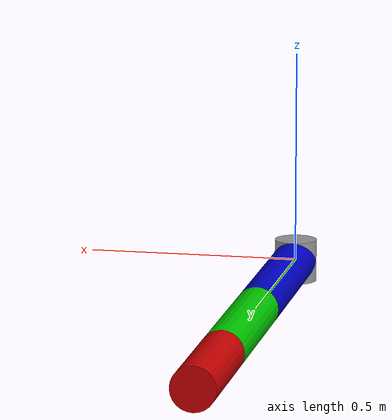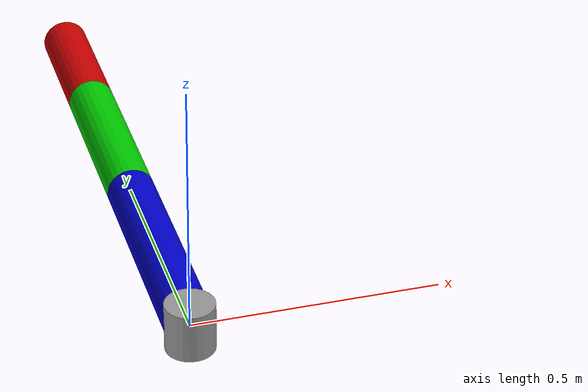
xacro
<?xml version="1.0"?>
<robot name="ruckig_robot" xmlns:xacro="http://ros.org/wiki/xacro">

  <!-- Dummy root link with no inertia -->
  <link name="world"/>

  <!-- Fixed joint tying world → base_link -->
  <joint name="world_to_base" type="fixed">
    <parent link="world"/>
    <child  link="base_link"/>
    <origin xyz="0 0 0" rpy="0 0 0"/>
  </joint>

  <!-- Parameters -->
  <xacro:property name="link_radius"      value="0.05" />
  <xacro:property name="link_length1"    value="0.5" />
  <xacro:property name="link_length2"    value="0.4" />
  <xacro:property name="link_length3"    value="0.3" />
  <xacro:property name="mass_base"       value="2.0" />
  <xacro:property name="mass1"           value="1.0" />
  <xacro:property name="mass2"           value="0.8" />
  <xacro:property name="mass3"           value="0.6" />

  <!-- Base link (now a child of world) -->
  <link name="base_link">
    <inertial>
      <origin xyz="0 0 0" rpy="0 0 0"/>
      <mass    value="${mass_base}"/>
      <inertia
        ixx="0.02" iyy="0.02" izz="0.02"
        ixy="0"    ixz="0"    iyz="0"/>
    </inertial>
    <visual>
      <geometry>
        <cylinder radius="${link_radius}" length="0.1"/>
      </geometry>
      <material name="Grey">
        <color rgba="0.6 0.6 0.6 1.0"/>
      </material>
    </visual>
  </link>

  <!-- Link 1 -->
  <link name="link1">
    <inertial>
      <origin xyz="0 ${link_length1/2} 0" rpy="1.5708 0 0"/>
      <mass    value="${mass1}"/>
      <inertia
        ixx="0.010" iyy="0.010" izz="0.005"
        ixy="0"     ixz="0"     iyz="0"/>
    </inertial>
    <visual>
      <origin xyz="0 ${link_length1/2} 0" rpy="1.5708 0 0"/>
      <geometry>
        <cylinder radius="${link_radius}" length="${link_length1}"/>
      </geometry>
      <material name="Blue">
        <color rgba="0.0 0.0 0.8 1.0"/>
      </material>
    </visual>
  </link>

  <!-- Link 2 -->
  <link name="link2">
    <inertial>
      <origin xyz="0 ${link_length2/2} 0" rpy="1.5708 0 0"/>
      <mass    value="${mass2}"/>
      <inertia
        ixx="0.008" iyy="0.008" izz="0.004"
        ixy="0"     ixz="0"     iyz="0"/>
    </inertial>
    <visual>
      <origin xyz="0 ${link_length2/2} 0" rpy="1.5708 0 0"/>
      <geometry>
        <cylinder radius="${link_radius}" length="${link_length2}"/>
      </geometry>
      <material name="Green">
        <color rgba="0.0 0.8 0.0 1.0"/>
      </material>
    </visual>
  </link>

  <!-- Link 3 -->
  <link name="link3">
    <inertial>
      <origin xyz="0 ${link_length3/2} 0" rpy="1.5708 0 0"/>
      <mass    value="${mass3}"/>
      <inertia
        ixx="0.006" iyy="0.006" izz="0.003"
        ixy="0"     ixz="0"     iyz="0"/>
    </inertial>
    <visual>
      <origin xyz="0 ${link_length3/2} 0" rpy="1.5708 0 0"/>
      <geometry>
        <cylinder radius="${link_radius}" length="${link_length3}"/>
      </geometry>
      <material name="Red">
        <color rgba="0.8 0.0 0.0 1.0"/>
      </material>
    </visual>
  </link>

  <!-- Joints -->
  <joint name="joint1" type="revolute">
    <parent link="base_link"/>
    <child  link="link1"/>
    <origin xyz="0 0 0" rpy="0 0 0"/>
    <axis  xyz="0 0 1"/>
    <limit effort="10.0" velocity="3.0"/>
  </joint>

  <joint name="joint2" type="revolute">
    <parent link="link1"/>
    <child  link="link2"/>
    <origin xyz="0 ${link_length1} 0" rpy="0 0 0"/>
    <axis  xyz="0 0 1"/>
    <limit effort="10.0" velocity="1.0"/>
  </joint>

  <joint name="joint3" type="revolute">
    <parent link="link2"/>
    <child  link="link3"/>
    <origin xyz="0 ${link_length2} 0" rpy="0 0 0"/>
    <axis  xyz="0 0 1"/>
    <limit effort="10.0" velocity="3.0"/>
  </joint>

</robot>
